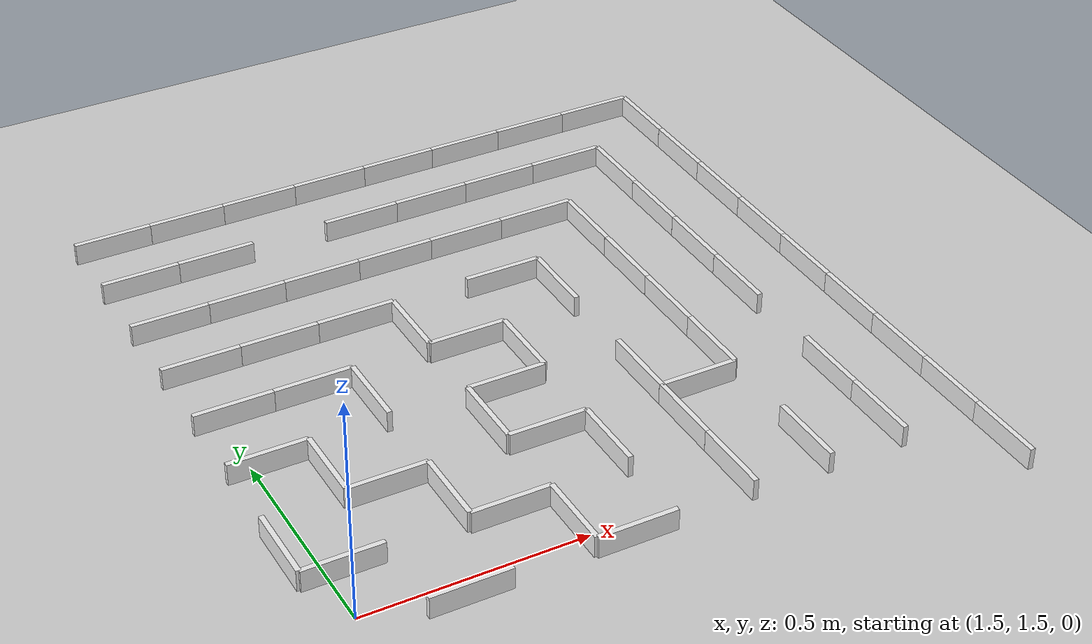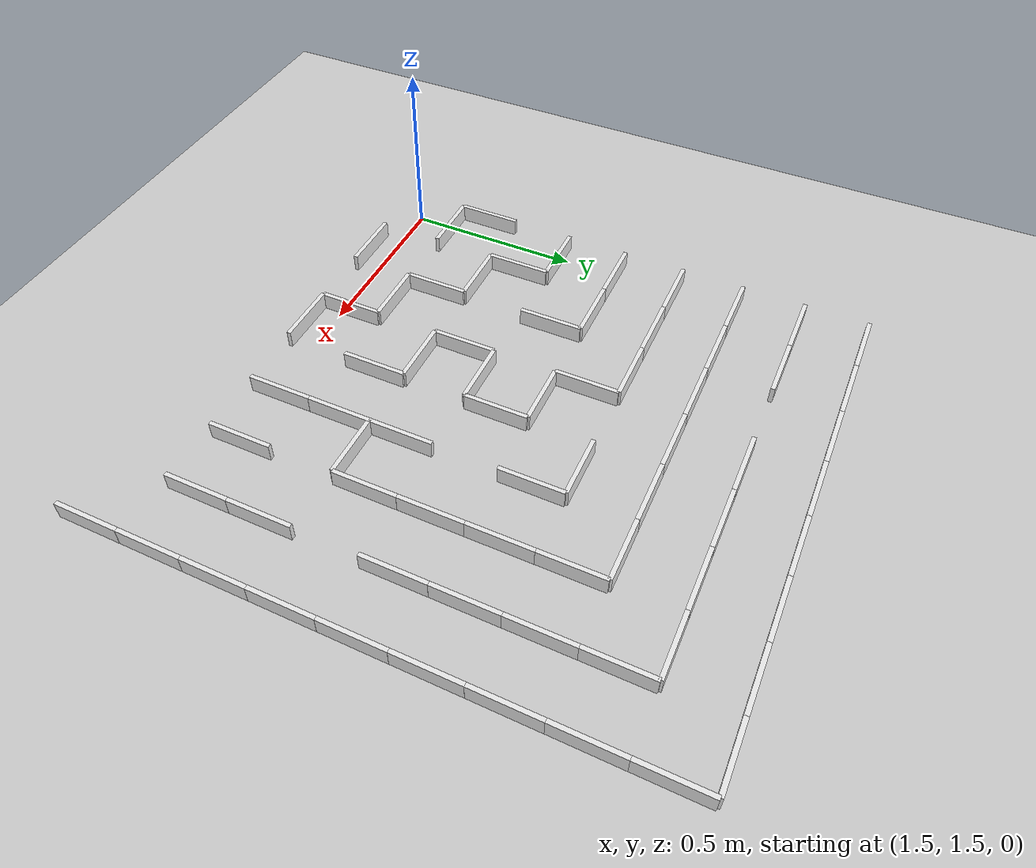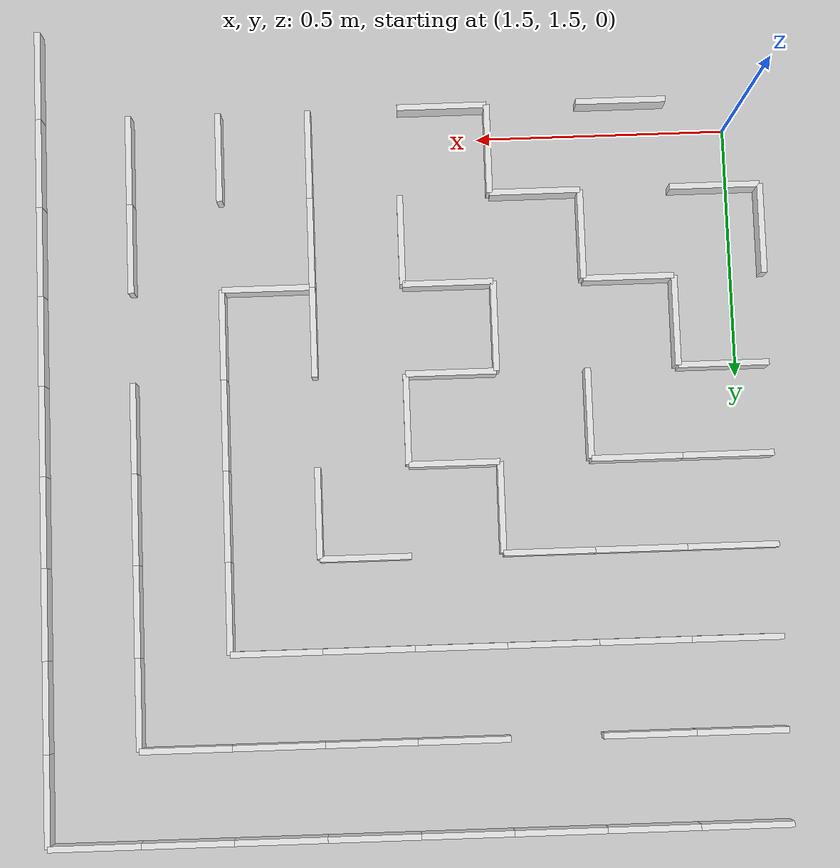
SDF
<sdf version="1.4">
 <world name="default">
  <include><uri>model://ground_plane</uri></include>
  <model name="wall">
   <pose>1.53 2.88 0.025 0 0 0</pose>
   <link name="link">
    <inertial>
     <mass>10</mass>
     <inertia><ixx>1</ixx><ixy>0</ixy><ixz>0</ixz><iyy>1</iyy><iyz>0</iyz><izz>1</izz></inertia>
    </inertial>
    <collision name="collision"><geometry><box><size>0.180 0.012 0.050</size></box></geometry></collision>
    <visual name="visual">
     <geometry><box><size>0.180 0.012 0.050</size></box></geometry>
     <material>
      <script><uri>file://media/materials/scripts/gazebo.material</uri><name>Gazebo/White</name></script>
     </material>
    </visual>
    <velocity_decay><linear>0</linear><angular>0</angular></velocity_decay>
   </link>
   <static>1</static>
  </model>
  <model name="wall">
   <pose>1.71 2.88 0.025 0 0 0</pose>
   <link name="link">
    <inertial>
     <mass>10</mass>
     <inertia><ixx>1</ixx><ixy>0</ixy><ixz>0</ixz><iyy>1</iyy><iyz>0</iyz><izz>1</izz></inertia>
    </inertial>
    <collision name="collision"><geometry><box><size>0.180 0.012 0.050</size></box></geometry></collision>
    <visual name="visual">
     <geometry><box><size>0.180 0.012 0.050</size></box></geometry>
     <material>
      <script><uri>file://media/materials/scripts/gazebo.material</uri><name>Gazebo/White</name></script>
     </material>
    </visual>
    <velocity_decay><linear>0</linear><angular>0</angular></velocity_decay>
   </link>
   <static>1</static>
  </model>
  <model name="wall">
   <pose>1.89 2.88 0.025 0 0 0</pose>
   <link name="link">
    <inertial>
     <mass>10</mass>
     <inertia><ixx>1</ixx><ixy>0</ixy><ixz>0</ixz><iyy>1</iyy><iyz>0</iyz><izz>1</izz></inertia>
    </inertial>
    <collision name="collision"><geometry><box><size>0.180 0.012 0.050</size></box></geometry></collision>
    <visual name="visual">
     <geometry><box><size>0.180 0.012 0.050</size></box></geometry>
     <material>
      <script><uri>file://media/materials/scripts/gazebo.material</uri><name>Gazebo/White</name></script>
     </material>
    </visual>
    <velocity_decay><linear>0</linear><angular>0</angular></velocity_decay>
   </link>
   <static>1</static>
  </model>
  <model name="wall">
   <pose>2.07 2.88 0.025 0 0 0</pose>
   <link name="link">
    <inertial>
     <mass>10</mass>
     <inertia><ixx>1</ixx><ixy>0</ixy><ixz>0</ixz><iyy>1</iyy><iyz>0</iyz><izz>1</izz></inertia>
    </inertial>
    <collision name="collision"><geometry><box><size>0.180 0.012 0.050</size></box></geometry></collision>
    <visual name="visual">
     <geometry><box><size>0.180 0.012 0.050</size></box></geometry>
     <material>
      <script><uri>file://media/materials/scripts/gazebo.material</uri><name>Gazebo/White</name></script>
     </material>
    </visual>
    <velocity_decay><linear>0</linear><angular>0</angular></velocity_decay>
   </link>
   <static>1</static>
  </model>
  <model name="wall">
   <pose>2.25 2.88 0.025 0 0 0</pose>
   <link name="link">
    <inertial>
     <mass>10</mass>
     <inertia><ixx>1</ixx><ixy>0</ixy><ixz>0</ixz><iyy>1</iyy><iyz>0</iyz><izz>1</izz></inertia>
    </inertial>
    <collision name="collision"><geometry><box><size>0.180 0.012 0.050</size></box></geometry></collision>
    <visual name="visual">
     <geometry><box><size>0.180 0.012 0.050</size></box></geometry>
     <material>
      <script><uri>file://media/materials/scripts/gazebo.material</uri><name>Gazebo/White</name></script>
     </material>
    </visual>
    <velocity_decay><linear>0</linear><angular>0</angular></velocity_decay>
   </link>
   <static>1</static>
  </model>
  <model name="wall">
   <pose>2.43 2.88 0.025 0 0 0</pose>
   <link name="link">
    <inertial>
     <mass>10</mass>
     <inertia><ixx>1</ixx><ixy>0</ixy><ixz>0</ixz><iyy>1</iyy><iyz>0</iyz><izz>1</izz></inertia>
    </inertial>
    <collision name="collision"><geometry><box><size>0.180 0.012 0.050</size></box></geometry></collision>
    <visual name="visual">
     <geometry><box><size>0.180 0.012 0.050</size></box></geometry>
     <material>
      <script><uri>file://media/materials/scripts/gazebo.material</uri><name>Gazebo/White</name></script>
     </material>
    </visual>
    <velocity_decay><linear>0</linear><angular>0</angular></velocity_decay>
   </link>
   <static>1</static>
  </model>
  <model name="wall">
   <pose>2.61 2.88 0.025 0 0 0</pose>
   <link name="link">
    <inertial>
     <mass>10</mass>
     <inertia><ixx>1</ixx><ixy>0</ixy><ixz>0</ixz><iyy>1</iyy><iyz>0</iyz><izz>1</izz></inertia>
    </inertial>
    <collision name="collision"><geometry><box><size>0.180 0.012 0.050</size></box></geometry></collision>
    <visual name="visual">
     <geometry><box><size>0.180 0.012 0.050</size></box></geometry>
     <material>
      <script><uri>file://media/materials/scripts/gazebo.material</uri><name>Gazebo/White</name></script>
     </material>
    </visual>
    <velocity_decay><linear>0</linear><angular>0</angular></velocity_decay>
   </link>
   <static>1</static>
  </model>
  <model name="wall">
   <pose>2.79 2.88 0.025 0 0 0</pose>
   <link name="link">
    <inertial>
     <mass>10</mass>
     <inertia><ixx>1</ixx><ixy>0</ixy><ixz>0</ixz><iyy>1</iyy><iyz>0</iyz><izz>1</izz></inertia>
    </inertial>
    <collision name="collision"><geometry><box><size>0.180 0.012 0.050</size></box></geometry></collision>
    <visual name="visual">
     <geometry><box><size>0.180 0.012 0.050</size></box></geometry>
     <material>
      <script><uri>file://media/materials/scripts/gazebo.material</uri><name>Gazebo/White</name></script>
     </material>
    </visual>
    <velocity_decay><linear>0</linear><angular>0</angular></velocity_decay>
   </link>
   <static>1</static>
  </model>
  <model name="wall">
   <pose>1.53 2.7 0.025 0 0 0</pose>
   <link name="link">
    <inertial>
     <mass>10</mass>
     <inertia><ixx>1</ixx><ixy>0</ixy><ixz>0</ixz><iyy>1</iyy><iyz>0</iyz><izz>1</izz></inertia>
    </inertial>
    <collision name="collision"><geometry><box><size>0.180 0.012 0.050</size></box></geometry></collision>
    <visual name="visual">
     <geometry><box><size>0.180 0.012 0.050</size></box></geometry>
     <material>
      <script><uri>file://media/materials/scripts/gazebo.material</uri><name>Gazebo/White</name></script>
     </material>
    </visual>
    <velocity_decay><linear>0</linear><angular>0</angular></velocity_decay>
   </link>
   <static>1</static>
  </model>
  <model name="wall">
   <pose>1.71 2.7 0.025 0 0 0</pose>
   <link name="link">
    <inertial>
     <mass>10</mass>
     <inertia><ixx>1</ixx><ixy>0</ixy><ixz>0</ixz><iyy>1</iyy><iyz>0</iyz><izz>1</izz></inertia>
    </inertial>
    <collision name="collision"><geometry><box><size>0.180 0.012 0.050</size></box></geometry></collision>
    <visual name="visual">
     <geometry><box><size>0.180 0.012 0.050</size></box></geometry>
     <material>
      <script><uri>file://media/materials/scripts/gazebo.material</uri><name>Gazebo/White</name></script>
     </material>
    </visual>
    <velocity_decay><linear>0</linear><angular>0</angular></velocity_decay>
   </link>
   <static>1</static>
  </model>
  <model name="wall">
   <pose>2.07 2.7 0.025 0 0 0</pose>
   <link name="link">
    <inertial>
     <mass>10</mass>
     <inertia><ixx>1</ixx><ixy>0</ixy><ixz>0</ixz><iyy>1</iyy><iyz>0</iyz><izz>1</izz></inertia>
    </inertial>
    <collision name="collision"><geometry><box><size>0.180 0.012 0.050</size></box></geometry></collision>
    <visual name="visual">
     <geometry><box><size>0.180 0.012 0.050</size></box></geometry>
     <material>
      <script><uri>file://media/materials/scripts/gazebo.material</uri><name>Gazebo/White</name></script>
     </material>
    </visual>
    <velocity_decay><linear>0</linear><angular>0</angular></velocity_decay>
   </link>
   <static>1</static>
  </model>
  <model name="wall">
   <pose>2.25 2.7 0.025 0 0 0</pose>
   <link name="link">
    <inertial>
     <mass>10</mass>
     <inertia><ixx>1</ixx><ixy>0</ixy><ixz>0</ixz><iyy>1</iyy><iyz>0</iyz><izz>1</izz></inertia>
    </inertial>
    <collision name="collision"><geometry><box><size>0.180 0.012 0.050</size></box></geometry></collision>
    <visual name="visual">
     <geometry><box><size>0.180 0.012 0.050</size></box></geometry>
     <material>
      <script><uri>file://media/materials/scripts/gazebo.material</uri><name>Gazebo/White</name></script>
     </material>
    </visual>
    <velocity_decay><linear>0</linear><angular>0</angular></velocity_decay>
   </link>
   <static>1</static>
  </model>
  <model name="wall">
   <pose>2.43 2.7 0.025 0 0 0</pose>
   <link name="link">
    <inertial>
     <mass>10</mass>
     <inertia><ixx>1</ixx><ixy>0</ixy><ixz>0</ixz><iyy>1</iyy><iyz>0</iyz><izz>1</izz></inertia>
    </inertial>
    <collision name="collision"><geometry><box><size>0.180 0.012 0.050</size></box></geometry></collision>
    <visual name="visual">
     <geometry><box><size>0.180 0.012 0.050</size></box></geometry>
     <material>
      <script><uri>file://media/materials/scripts/gazebo.material</uri><name>Gazebo/White</name></script>
     </material>
    </visual>
    <velocity_decay><linear>0</linear><angular>0</angular></velocity_decay>
   </link>
   <static>1</static>
  </model>
  <model name="wall">
   <pose>2.61 2.7 0.025 0 0 0</pose>
   <link name="link">
    <inertial>
     <mass>10</mass>
     <inertia><ixx>1</ixx><ixy>0</ixy><ixz>0</ixz><iyy>1</iyy><iyz>0</iyz><izz>1</izz></inertia>
    </inertial>
    <collision name="collision"><geometry><box><size>0.180 0.012 0.050</size></box></geometry></collision>
    <visual name="visual">
     <geometry><box><size>0.180 0.012 0.050</size></box></geometry>
     <material>
      <script><uri>file://media/materials/scripts/gazebo.material</uri><name>Gazebo/White</name></script>
     </material>
    </visual>
    <velocity_decay><linear>0</linear><angular>0</angular></velocity_decay>
   </link>
   <static>1</static>
  </model>
  <model name="wall">
   <pose>1.53 2.52 0.025 0 0 0</pose>
   <link name="link">
    <inertial>
     <mass>10</mass>
     <inertia><ixx>1</ixx><ixy>0</ixy><ixz>0</ixz><iyy>1</iyy><iyz>0</iyz><izz>1</izz></inertia>
    </inertial>
    <collision name="collision"><geometry><box><size>0.180 0.012 0.050</size></box></geometry></collision>
    <visual name="visual">
     <geometry><box><size>0.180 0.012 0.050</size></box></geometry>
     <material>
      <script><uri>file://media/materials/scripts/gazebo.material</uri><name>Gazebo/White</name></script>
     </material>
    </visual>
    <velocity_decay><linear>0</linear><angular>0</angular></velocity_decay>
   </link>
   <static>1</static>
  </model>
  <model name="wall">
   <pose>1.71 2.52 0.025 0 0 0</pose>
   <link name="link">
    <inertial>
     <mass>10</mass>
     <inertia><ixx>1</ixx><ixy>0</ixy><ixz>0</ixz><iyy>1</iyy><iyz>0</iyz><izz>1</izz></inertia>
    </inertial>
    <collision name="collision"><geometry><box><size>0.180 0.012 0.050</size></box></geometry></collision>
    <visual name="visual">
     <geometry><box><size>0.180 0.012 0.050</size></box></geometry>
     <material>
      <script><uri>file://media/materials/scripts/gazebo.material</uri><name>Gazebo/White</name></script>
     </material>
    </visual>
    <velocity_decay><linear>0</linear><angular>0</angular></velocity_decay>
   </link>
   <static>1</static>
  </model>
  <model name="wall">
   <pose>1.89 2.52 0.025 0 0 0</pose>
   <link name="link">
    <inertial>
     <mass>10</mass>
     <inertia><ixx>1</ixx><ixy>0</ixy><ixz>0</ixz><iyy>1</iyy><iyz>0</iyz><izz>1</izz></inertia>
    </inertial>
    <collision name="collision"><geometry><box><size>0.180 0.012 0.050</size></box></geometry></collision>
    <visual name="visual">
     <geometry><box><size>0.180 0.012 0.050</size></box></geometry>
     <material>
      <script><uri>file://media/materials/scripts/gazebo.material</uri><name>Gazebo/White</name></script>
     </material>
    </visual>
    <velocity_decay><linear>0</linear><angular>0</angular></velocity_decay>
   </link>
   <static>1</static>
  </model>
  <model name="wall">
   <pose>2.07 2.52 0.025 0 0 0</pose>
   <link name="link">
    <inertial>
     <mass>10</mass>
     <inertia><ixx>1</ixx><ixy>0</ixy><ixz>0</ixz><iyy>1</iyy><iyz>0</iyz><izz>1</izz></inertia>
    </inertial>
    <collision name="collision"><geometry><box><size>0.180 0.012 0.050</size></box></geometry></collision>
    <visual name="visual">
     <geometry><box><size>0.180 0.012 0.050</size></box></geometry>
     <material>
      <script><uri>file://media/materials/scripts/gazebo.material</uri><name>Gazebo/White</name></script>
     </material>
    </visual>
    <velocity_decay><linear>0</linear><angular>0</angular></velocity_decay>
   </link>
   <static>1</static>
  </model>
  <model name="wall">
   <pose>2.25 2.52 0.025 0 0 0</pose>
   <link name="link">
    <inertial>
     <mass>10</mass>
     <inertia><ixx>1</ixx><ixy>0</ixy><ixz>0</ixz><iyy>1</iyy><iyz>0</iyz><izz>1</izz></inertia>
    </inertial>
    <collision name="collision"><geometry><box><size>0.180 0.012 0.050</size></box></geometry></collision>
    <visual name="visual">
     <geometry><box><size>0.180 0.012 0.050</size></box></geometry>
     <material>
      <script><uri>file://media/materials/scripts/gazebo.material</uri><name>Gazebo/White</name></script>
     </material>
    </visual>
    <velocity_decay><linear>0</linear><angular>0</angular></velocity_decay>
   </link>
   <static>1</static>
  </model>
  <model name="wall">
   <pose>2.43 2.52 0.025 0 0 0</pose>
   <link name="link">
    <inertial>
     <mass>10</mass>
     <inertia><ixx>1</ixx><ixy>0</ixy><ixz>0</ixz><iyy>1</iyy><iyz>0</iyz><izz>1</izz></inertia>
    </inertial>
    <collision name="collision"><geometry><box><size>0.180 0.012 0.050</size></box></geometry></collision>
    <visual name="visual">
     <geometry><box><size>0.180 0.012 0.050</size></box></geometry>
     <material>
      <script><uri>file://media/materials/scripts/gazebo.material</uri><name>Gazebo/White</name></script>
     </material>
    </visual>
    <velocity_decay><linear>0</linear><angular>0</angular></velocity_decay>
   </link>
   <static>1</static>
  </model>
  <model name="wall">
   <pose>1.53 2.34 0.025 0 0 0</pose>
   <link name="link">
    <inertial>
     <mass>10</mass>
     <inertia><ixx>1</ixx><ixy>0</ixy><ixz>0</ixz><iyy>1</iyy><iyz>0</iyz><izz>1</izz></inertia>
    </inertial>
    <collision name="collision"><geometry><box><size>0.180 0.012 0.050</size></box></geometry></collision>
    <visual name="visual">
     <geometry><box><size>0.180 0.012 0.050</size></box></geometry>
     <material>
      <script><uri>file://media/materials/scripts/gazebo.material</uri><name>Gazebo/White</name></script>
     </material>
    </visual>
    <velocity_decay><linear>0</linear><angular>0</angular></velocity_decay>
   </link>
   <static>1</static>
  </model>
  <model name="wall">
   <pose>1.71 2.34 0.025 0 0 0</pose>
   <link name="link">
    <inertial>
     <mass>10</mass>
     <inertia><ixx>1</ixx><ixy>0</ixy><ixz>0</ixz><iyy>1</iyy><iyz>0</iyz><izz>1</izz></inertia>
    </inertial>
    <collision name="collision"><geometry><box><size>0.180 0.012 0.050</size></box></geometry></collision>
    <visual name="visual">
     <geometry><box><size>0.180 0.012 0.050</size></box></geometry>
     <material>
      <script><uri>file://media/materials/scripts/gazebo.material</uri><name>Gazebo/White</name></script>
     </material>
    </visual>
    <velocity_decay><linear>0</linear><angular>0</angular></velocity_decay>
   </link>
   <static>1</static>
  </model>
  <model name="wall">
   <pose>1.89 2.34 0.025 0 0 0</pose>
   <link name="link">
    <inertial>
     <mass>10</mass>
     <inertia><ixx>1</ixx><ixy>0</ixy><ixz>0</ixz><iyy>1</iyy><iyz>0</iyz><izz>1</izz></inertia>
    </inertial>
    <collision name="collision"><geometry><box><size>0.180 0.012 0.050</size></box></geometry></collision>
    <visual name="visual">
     <geometry><box><size>0.180 0.012 0.050</size></box></geometry>
     <material>
      <script><uri>file://media/materials/scripts/gazebo.material</uri><name>Gazebo/White</name></script>
     </material>
    </visual>
    <velocity_decay><linear>0</linear><angular>0</angular></velocity_decay>
   </link>
   <static>1</static>
  </model>
  <model name="wall">
   <pose>2.25 2.34 0.025 0 0 0</pose>
   <link name="link">
    <inertial>
     <mass>10</mass>
     <inertia><ixx>1</ixx><ixy>0</ixy><ixz>0</ixz><iyy>1</iyy><iyz>0</iyz><izz>1</izz></inertia>
    </inertial>
    <collision name="collision"><geometry><box><size>0.180 0.012 0.050</size></box></geometry></collision>
    <visual name="visual">
     <geometry><box><size>0.180 0.012 0.050</size></box></geometry>
     <material>
      <script><uri>file://media/materials/scripts/gazebo.material</uri><name>Gazebo/White</name></script>
     </material>
    </visual>
    <velocity_decay><linear>0</linear><angular>0</angular></velocity_decay>
   </link>
   <static>1</static>
  </model>
  <model name="wall">
   <pose>1.53 2.16 0.025 0 0 0</pose>
   <link name="link">
    <inertial>
     <mass>10</mass>
     <inertia><ixx>1</ixx><ixy>0</ixy><ixz>0</ixz><iyy>1</iyy><iyz>0</iyz><izz>1</izz></inertia>
    </inertial>
    <collision name="collision"><geometry><box><size>0.180 0.012 0.050</size></box></geometry></collision>
    <visual name="visual">
     <geometry><box><size>0.180 0.012 0.050</size></box></geometry>
     <material>
      <script><uri>file://media/materials/scripts/gazebo.material</uri><name>Gazebo/White</name></script>
     </material>
    </visual>
    <velocity_decay><linear>0</linear><angular>0</angular></velocity_decay>
   </link>
   <static>1</static>
  </model>
  <model name="wall">
   <pose>1.71 2.16 0.025 0 0 0</pose>
   <link name="link">
    <inertial>
     <mass>10</mass>
     <inertia><ixx>1</ixx><ixy>0</ixy><ixz>0</ixz><iyy>1</iyy><iyz>0</iyz><izz>1</izz></inertia>
    </inertial>
    <collision name="collision"><geometry><box><size>0.180 0.012 0.050</size></box></geometry></collision>
    <visual name="visual">
     <geometry><box><size>0.180 0.012 0.050</size></box></geometry>
     <material>
      <script><uri>file://media/materials/scripts/gazebo.material</uri><name>Gazebo/White</name></script>
     </material>
    </visual>
    <velocity_decay><linear>0</linear><angular>0</angular></velocity_decay>
   </link>
   <static>1</static>
  </model>
  <model name="wall">
   <pose>2.07 2.16 0.025 0 0 0</pose>
   <link name="link">
    <inertial>
     <mass>10</mass>
     <inertia><ixx>1</ixx><ixy>0</ixy><ixz>0</ixz><iyy>1</iyy><iyz>0</iyz><izz>1</izz></inertia>
    </inertial>
    <collision name="collision"><geometry><box><size>0.180 0.012 0.050</size></box></geometry></collision>
    <visual name="visual">
     <geometry><box><size>0.180 0.012 0.050</size></box></geometry>
     <material>
      <script><uri>file://media/materials/scripts/gazebo.material</uri><name>Gazebo/White</name></script>
     </material>
    </visual>
    <velocity_decay><linear>0</linear><angular>0</angular></velocity_decay>
   </link>
   <static>1</static>
  </model>
  <model name="wall">
   <pose>1.53 1.98 0.025 0 0 0</pose>
   <link name="link">
    <inertial>
     <mass>10</mass>
     <inertia><ixx>1</ixx><ixy>0</ixy><ixz>0</ixz><iyy>1</iyy><iyz>0</iyz><izz>1</izz></inertia>
    </inertial>
    <collision name="collision"><geometry><box><size>0.180 0.012 0.050</size></box></geometry></collision>
    <visual name="visual">
     <geometry><box><size>0.180 0.012 0.050</size></box></geometry>
     <material>
      <script><uri>file://media/materials/scripts/gazebo.material</uri><name>Gazebo/White</name></script>
     </material>
    </visual>
    <velocity_decay><linear>0</linear><angular>0</angular></velocity_decay>
   </link>
   <static>1</static>
  </model>
  <model name="wall">
   <pose>2.07 1.98 0.025 0 0 0</pose>
   <link name="link">
    <inertial>
     <mass>10</mass>
     <inertia><ixx>1</ixx><ixy>0</ixy><ixz>0</ixz><iyy>1</iyy><iyz>0</iyz><izz>1</izz></inertia>
    </inertial>
    <collision name="collision"><geometry><box><size>0.180 0.012 0.050</size></box></geometry></collision>
    <visual name="visual">
     <geometry><box><size>0.180 0.012 0.050</size></box></geometry>
     <material>
      <script><uri>file://media/materials/scripts/gazebo.material</uri><name>Gazebo/White</name></script>
     </material>
    </visual>
    <velocity_decay><linear>0</linear><angular>0</angular></velocity_decay>
   </link>
   <static>1</static>
  </model>
  <model name="wall">
   <pose>1.71 1.8 0.025 0 0 0</pose>
   <link name="link">
    <inertial>
     <mass>10</mass>
     <inertia><ixx>1</ixx><ixy>0</ixy><ixz>0</ixz><iyy>1</iyy><iyz>0</iyz><izz>1</izz></inertia>
    </inertial>
    <collision name="collision"><geometry><box><size>0.180 0.012 0.050</size></box></geometry></collision>
    <visual name="visual">
     <geometry><box><size>0.180 0.012 0.050</size></box></geometry>
     <material>
      <script><uri>file://media/materials/scripts/gazebo.material</uri><name>Gazebo/White</name></script>
     </material>
    </visual>
    <velocity_decay><linear>0</linear><angular>0</angular></velocity_decay>
   </link>
   <static>1</static>
  </model>
  <model name="wall">
   <pose>2.07 1.8 0.025 0 0 0</pose>
   <link name="link">
    <inertial>
     <mass>10</mass>
     <inertia><ixx>1</ixx><ixy>0</ixy><ixz>0</ixz><iyy>1</iyy><iyz>0</iyz><izz>1</izz></inertia>
    </inertial>
    <collision name="collision"><geometry><box><size>0.180 0.012 0.050</size></box></geometry></collision>
    <visual name="visual">
     <geometry><box><size>0.180 0.012 0.050</size></box></geometry>
     <material>
      <script><uri>file://media/materials/scripts/gazebo.material</uri><name>Gazebo/White</name></script>
     </material>
    </visual>
    <velocity_decay><linear>0</linear><angular>0</angular></velocity_decay>
   </link>
   <static>1</static>
  </model>
  <model name="wall">
   <pose>2.43 1.8 0.025 0 0 0</pose>
   <link name="link">
    <inertial>
     <mass>10</mass>
     <inertia><ixx>1</ixx><ixy>0</ixy><ixz>0</ixz><iyy>1</iyy><iyz>0</iyz><izz>1</izz></inertia>
    </inertial>
    <collision name="collision"><geometry><box><size>0.180 0.012 0.050</size></box></geometry></collision>
    <visual name="visual">
     <geometry><box><size>0.180 0.012 0.050</size></box></geometry>
     <material>
      <script><uri>file://media/materials/scripts/gazebo.material</uri><name>Gazebo/White</name></script>
     </material>
    </visual>
    <velocity_decay><linear>0</linear><angular>0</angular></velocity_decay>
   </link>
   <static>1</static>
  </model>
  <model name="wall">
   <pose>1.53 1.62 0.025 0 0 0</pose>
   <link name="link">
    <inertial>
     <mass>10</mass>
     <inertia><ixx>1</ixx><ixy>0</ixy><ixz>0</ixz><iyy>1</iyy><iyz>0</iyz><izz>1</izz></inertia>
    </inertial>
    <collision name="collision"><geometry><box><size>0.180 0.012 0.050</size></box></geometry></collision>
    <visual name="visual">
     <geometry><box><size>0.180 0.012 0.050</size></box></geometry>
     <material>
      <script><uri>file://media/materials/scripts/gazebo.material</uri><name>Gazebo/White</name></script>
     </material>
    </visual>
    <velocity_decay><linear>0</linear><angular>0</angular></velocity_decay>
   </link>
   <static>1</static>
  </model>
  <model name="wall">
   <pose>1.89 1.62 0.025 0 0 0</pose>
   <link name="link">
    <inertial>
     <mass>10</mass>
     <inertia><ixx>1</ixx><ixy>0</ixy><ixz>0</ixz><iyy>1</iyy><iyz>0</iyz><izz>1</izz></inertia>
    </inertial>
    <collision name="collision"><geometry><box><size>0.180 0.012 0.050</size></box></geometry></collision>
    <visual name="visual">
     <geometry><box><size>0.180 0.012 0.050</size></box></geometry>
     <material>
      <script><uri>file://media/materials/scripts/gazebo.material</uri><name>Gazebo/White</name></script>
     </material>
    </visual>
    <velocity_decay><linear>0</linear><angular>0</angular></velocity_decay>
   </link>
   <static>1</static>
  </model>
  <model name="wall">
   <pose>1.71 1.44 0.025 0 0 0</pose>
   <link name="link">
    <inertial>
     <mass>10</mass>
     <inertia><ixx>1</ixx><ixy>0</ixy><ixz>0</ixz><iyy>1</iyy><iyz>0</iyz><izz>1</izz></inertia>
    </inertial>
    <collision name="collision"><geometry><box><size>0.180 0.012 0.050</size></box></geometry></collision>
    <visual name="visual">
     <geometry><box><size>0.180 0.012 0.050</size></box></geometry>
     <material>
      <script><uri>file://media/materials/scripts/gazebo.material</uri><name>Gazebo/White</name></script>
     </material>
    </visual>
    <velocity_decay><linear>0</linear><angular>0</angular></velocity_decay>
   </link>
   <static>1</static>
  </model>
  <model name="wall">
   <pose>2.07 1.44 0.025 0 0 0</pose>
   <link name="link">
    <inertial>
     <mass>10</mass>
     <inertia><ixx>1</ixx><ixy>0</ixy><ixz>0</ixz><iyy>1</iyy><iyz>0</iyz><izz>1</izz></inertia>
    </inertial>
    <collision name="collision"><geometry><box><size>0.180 0.012 0.050</size></box></geometry></collision>
    <visual name="visual">
     <geometry><box><size>0.180 0.012 0.050</size></box></geometry>
     <material>
      <script><uri>file://media/materials/scripts/gazebo.material</uri><name>Gazebo/White</name></script>
     </material>
    </visual>
    <velocity_decay><linear>0</linear><angular>0</angular></velocity_decay>
   </link>
   <static>1</static>
  </model>
  <model name="wall">
   <pose>2.88 2.79 0.025 0 0 1.57</pose>
   <link name="link">
    <inertial>
     <mass>10</mass>
     <inertia><ixx>1</ixx><ixy>0</ixy><ixz>0</ixz><iyy>1</iyy><iyz>0</iyz><izz>1</izz></inertia>
    </inertial>
    <collision name="collision"><geometry><box><size>0.180 0.012 0.050</size></box></geometry></collision>
    <visual name="visual">
     <geometry><box><size>0.180 0.012 0.050</size></box></geometry>
     <material>
      <script><uri>file://media/materials/scripts/gazebo.material</uri><name>Gazebo/White</name></script>
     </material>
    </visual>
    <velocity_decay><linear>0</linear><angular>0</angular></velocity_decay>
   </link>
   <static>1</static>
  </model>
  <model name="wall">
   <pose>2.7 2.61 0.025 0 0 1.57</pose>
   <link name="link">
    <inertial>
     <mass>10</mass>
     <inertia><ixx>1</ixx><ixy>0</ixy><ixz>0</ixz><iyy>1</iyy><iyz>0</iyz><izz>1</izz></inertia>
    </inertial>
    <collision name="collision"><geometry><box><size>0.180 0.012 0.050</size></box></geometry></collision>
    <visual name="visual">
     <geometry><box><size>0.180 0.012 0.050</size></box></geometry>
     <material>
      <script><uri>file://media/materials/scripts/gazebo.material</uri><name>Gazebo/White</name></script>
     </material>
    </visual>
    <velocity_decay><linear>0</linear><angular>0</angular></velocity_decay>
   </link>
   <static>1</static>
  </model>
  <model name="wall">
   <pose>2.88 2.61 0.025 0 0 1.57</pose>
   <link name="link">
    <inertial>
     <mass>10</mass>
     <inertia><ixx>1</ixx><ixy>0</ixy><ixz>0</ixz><iyy>1</iyy><iyz>0</iyz><izz>1</izz></inertia>
    </inertial>
    <collision name="collision"><geometry><box><size>0.180 0.012 0.050</size></box></geometry></collision>
    <visual name="visual">
     <geometry><box><size>0.180 0.012 0.050</size></box></geometry>
     <material>
      <script><uri>file://media/materials/scripts/gazebo.material</uri><name>Gazebo/White</name></script>
     </material>
    </visual>
    <velocity_decay><linear>0</linear><angular>0</angular></velocity_decay>
   </link>
   <static>1</static>
  </model>
  <model name="wall">
   <pose>2.52 2.43 0.025 0 0 1.57</pose>
   <link name="link">
    <inertial>
     <mass>10</mass>
     <inertia><ixx>1</ixx><ixy>0</ixy><ixz>0</ixz><iyy>1</iyy><iyz>0</iyz><izz>1</izz></inertia>
    </inertial>
    <collision name="collision"><geometry><box><size>0.180 0.012 0.050</size></box></geometry></collision>
    <visual name="visual">
     <geometry><box><size>0.180 0.012 0.050</size></box></geometry>
     <material>
      <script><uri>file://media/materials/scripts/gazebo.material</uri><name>Gazebo/White</name></script>
     </material>
    </visual>
    <velocity_decay><linear>0</linear><angular>0</angular></velocity_decay>
   </link>
   <static>1</static>
  </model>
  <model name="wall">
   <pose>2.7 2.43 0.025 0 0 1.57</pose>
   <link name="link">
    <inertial>
     <mass>10</mass>
     <inertia><ixx>1</ixx><ixy>0</ixy><ixz>0</ixz><iyy>1</iyy><iyz>0</iyz><izz>1</izz></inertia>
    </inertial>
    <collision name="collision"><geometry><box><size>0.180 0.012 0.050</size></box></geometry></collision>
    <visual name="visual">
     <geometry><box><size>0.180 0.012 0.050</size></box></geometry>
     <material>
      <script><uri>file://media/materials/scripts/gazebo.material</uri><name>Gazebo/White</name></script>
     </material>
    </visual>
    <velocity_decay><linear>0</linear><angular>0</angular></velocity_decay>
   </link>
   <static>1</static>
  </model>
  <model name="wall">
   <pose>2.88 2.43 0.025 0 0 1.57</pose>
   <link name="link">
    <inertial>
     <mass>10</mass>
     <inertia><ixx>1</ixx><ixy>0</ixy><ixz>0</ixz><iyy>1</iyy><iyz>0</iyz><izz>1</izz></inertia>
    </inertial>
    <collision name="collision"><geometry><box><size>0.180 0.012 0.050</size></box></geometry></collision>
    <visual name="visual">
     <geometry><box><size>0.180 0.012 0.050</size></box></geometry>
     <material>
      <script><uri>file://media/materials/scripts/gazebo.material</uri><name>Gazebo/White</name></script>
     </material>
    </visual>
    <velocity_decay><linear>0</linear><angular>0</angular></velocity_decay>
   </link>
   <static>1</static>
  </model>
  <model name="wall">
   <pose>1.98 2.25 0.025 0 0 1.57</pose>
   <link name="link">
    <inertial>
     <mass>10</mass>
     <inertia><ixx>1</ixx><ixy>0</ixy><ixz>0</ixz><iyy>1</iyy><iyz>0</iyz><izz>1</izz></inertia>
    </inertial>
    <collision name="collision"><geometry><box><size>0.180 0.012 0.050</size></box></geometry></collision>
    <visual name="visual">
     <geometry><box><size>0.180 0.012 0.050</size></box></geometry>
     <material>
      <script><uri>file://media/materials/scripts/gazebo.material</uri><name>Gazebo/White</name></script>
     </material>
    </visual>
    <velocity_decay><linear>0</linear><angular>0</angular></velocity_decay>
   </link>
   <static>1</static>
  </model>
  <model name="wall">
   <pose>2.34 2.25 0.025 0 0 1.57</pose>
   <link name="link">
    <inertial>
     <mass>10</mass>
     <inertia><ixx>1</ixx><ixy>0</ixy><ixz>0</ixz><iyy>1</iyy><iyz>0</iyz><izz>1</izz></inertia>
    </inertial>
    <collision name="collision"><geometry><box><size>0.180 0.012 0.050</size></box></geometry></collision>
    <visual name="visual">
     <geometry><box><size>0.180 0.012 0.050</size></box></geometry>
     <material>
      <script><uri>file://media/materials/scripts/gazebo.material</uri><name>Gazebo/White</name></script>
     </material>
    </visual>
    <velocity_decay><linear>0</linear><angular>0</angular></velocity_decay>
   </link>
   <static>1</static>
  </model>
  <model name="wall">
   <pose>2.52 2.25 0.025 0 0 1.57</pose>
   <link name="link">
    <inertial>
     <mass>10</mass>
     <inertia><ixx>1</ixx><ixy>0</ixy><ixz>0</ixz><iyy>1</iyy><iyz>0</iyz><izz>1</izz></inertia>
    </inertial>
    <collision name="collision"><geometry><box><size>0.180 0.012 0.050</size></box></geometry></collision>
    <visual name="visual">
     <geometry><box><size>0.180 0.012 0.050</size></box></geometry>
     <material>
      <script><uri>file://media/materials/scripts/gazebo.material</uri><name>Gazebo/White</name></script>
     </material>
    </visual>
    <velocity_decay><linear>0</linear><angular>0</angular></velocity_decay>
   </link>
   <static>1</static>
  </model>
  <model name="wall">
   <pose>2.7 2.25 0.025 0 0 1.57</pose>
   <link name="link">
    <inertial>
     <mass>10</mass>
     <inertia><ixx>1</ixx><ixy>0</ixy><ixz>0</ixz><iyy>1</iyy><iyz>0</iyz><izz>1</izz></inertia>
    </inertial>
    <collision name="collision"><geometry><box><size>0.180 0.012 0.050</size></box></geometry></collision>
    <visual name="visual">
     <geometry><box><size>0.180 0.012 0.050</size></box></geometry>
     <material>
      <script><uri>file://media/materials/scripts/gazebo.material</uri><name>Gazebo/White</name></script>
     </material>
    </visual>
    <velocity_decay><linear>0</linear><angular>0</angular></velocity_decay>
   </link>
   <static>1</static>
  </model>
  <model name="wall">
   <pose>2.88 2.25 0.025 0 0 1.57</pose>
   <link name="link">
    <inertial>
     <mass>10</mass>
     <inertia><ixx>1</ixx><ixy>0</ixy><ixz>0</ixz><iyy>1</iyy><iyz>0</iyz><izz>1</izz></inertia>
    </inertial>
    <collision name="collision"><geometry><box><size>0.180 0.012 0.050</size></box></geometry></collision>
    <visual name="visual">
     <geometry><box><size>0.180 0.012 0.050</size></box></geometry>
     <material>
      <script><uri>file://media/materials/scripts/gazebo.material</uri><name>Gazebo/White</name></script>
     </material>
    </visual>
    <velocity_decay><linear>0</linear><angular>0</angular></velocity_decay>
   </link>
   <static>1</static>
  </model>
  <model name="wall">
   <pose>1.8 2.07 0.025 0 0 1.57</pose>
   <link name="link">
    <inertial>
     <mass>10</mass>
     <inertia><ixx>1</ixx><ixy>0</ixy><ixz>0</ixz><iyy>1</iyy><iyz>0</iyz><izz>1</izz></inertia>
    </inertial>
    <collision name="collision"><geometry><box><size>0.180 0.012 0.050</size></box></geometry></collision>
    <visual name="visual">
     <geometry><box><size>0.180 0.012 0.050</size></box></geometry>
     <material>
      <script><uri>file://media/materials/scripts/gazebo.material</uri><name>Gazebo/White</name></script>
     </material>
    </visual>
    <velocity_decay><linear>0</linear><angular>0</angular></velocity_decay>
   </link>
   <static>1</static>
  </model>
  <model name="wall">
   <pose>2.16 2.07 0.025 0 0 1.57</pose>
   <link name="link">
    <inertial>
     <mass>10</mass>
     <inertia><ixx>1</ixx><ixy>0</ixy><ixz>0</ixz><iyy>1</iyy><iyz>0</iyz><izz>1</izz></inertia>
    </inertial>
    <collision name="collision"><geometry><box><size>0.180 0.012 0.050</size></box></geometry></collision>
    <visual name="visual">
     <geometry><box><size>0.180 0.012 0.050</size></box></geometry>
     <material>
      <script><uri>file://media/materials/scripts/gazebo.material</uri><name>Gazebo/White</name></script>
     </material>
    </visual>
    <velocity_decay><linear>0</linear><angular>0</angular></velocity_decay>
   </link>
   <static>1</static>
  </model>
  <model name="wall">
   <pose>2.52 2.07 0.025 0 0 1.57</pose>
   <link name="link">
    <inertial>
     <mass>10</mass>
     <inertia><ixx>1</ixx><ixy>0</ixy><ixz>0</ixz><iyy>1</iyy><iyz>0</iyz><izz>1</izz></inertia>
    </inertial>
    <collision name="collision"><geometry><box><size>0.180 0.012 0.050</size></box></geometry></collision>
    <visual name="visual">
     <geometry><box><size>0.180 0.012 0.050</size></box></geometry>
     <material>
      <script><uri>file://media/materials/scripts/gazebo.material</uri><name>Gazebo/White</name></script>
     </material>
    </visual>
    <velocity_decay><linear>0</linear><angular>0</angular></velocity_decay>
   </link>
   <static>1</static>
  </model>
  <model name="wall">
   <pose>2.7 2.07 0.025 0 0 1.57</pose>
   <link name="link">
    <inertial>
     <mass>10</mass>
     <inertia><ixx>1</ixx><ixy>0</ixy><ixz>0</ixz><iyy>1</iyy><iyz>0</iyz><izz>1</izz></inertia>
    </inertial>
    <collision name="collision"><geometry><box><size>0.180 0.012 0.050</size></box></geometry></collision>
    <visual name="visual">
     <geometry><box><size>0.180 0.012 0.050</size></box></geometry>
     <material>
      <script><uri>file://media/materials/scripts/gazebo.material</uri><name>Gazebo/White</name></script>
     </material>
    </visual>
    <velocity_decay><linear>0</linear><angular>0</angular></velocity_decay>
   </link>
   <static>1</static>
  </model>
  <model name="wall">
   <pose>2.88 2.07 0.025 0 0 1.57</pose>
   <link name="link">
    <inertial>
     <mass>10</mass>
     <inertia><ixx>1</ixx><ixy>0</ixy><ixz>0</ixz><iyy>1</iyy><iyz>0</iyz><izz>1</izz></inertia>
    </inertial>
    <collision name="collision"><geometry><box><size>0.180 0.012 0.050</size></box></geometry></collision>
    <visual name="visual">
     <geometry><box><size>0.180 0.012 0.050</size></box></geometry>
     <material>
      <script><uri>file://media/materials/scripts/gazebo.material</uri><name>Gazebo/White</name></script>
     </material>
    </visual>
    <velocity_decay><linear>0</linear><angular>0</angular></velocity_decay>
   </link>
   <static>1</static>
  </model>
  <model name="wall">
   <pose>1.62 1.89 0.025 0 0 1.57</pose>
   <link name="link">
    <inertial>
     <mass>10</mass>
     <inertia><ixx>1</ixx><ixy>0</ixy><ixz>0</ixz><iyy>1</iyy><iyz>0</iyz><izz>1</izz></inertia>
    </inertial>
    <collision name="collision"><geometry><box><size>0.180 0.012 0.050</size></box></geometry></collision>
    <visual name="visual">
     <geometry><box><size>0.180 0.012 0.050</size></box></geometry>
     <material>
      <script><uri>file://media/materials/scripts/gazebo.material</uri><name>Gazebo/White</name></script>
     </material>
    </visual>
    <velocity_decay><linear>0</linear><angular>0</angular></velocity_decay>
   </link>
   <static>1</static>
  </model>
  <model name="wall">
   <pose>1.98 1.89 0.025 0 0 1.57</pose>
   <link name="link">
    <inertial>
     <mass>10</mass>
     <inertia><ixx>1</ixx><ixy>0</ixy><ixz>0</ixz><iyy>1</iyy><iyz>0</iyz><izz>1</izz></inertia>
    </inertial>
    <collision name="collision"><geometry><box><size>0.180 0.012 0.050</size></box></geometry></collision>
    <visual name="visual">
     <geometry><box><size>0.180 0.012 0.050</size></box></geometry>
     <material>
      <script><uri>file://media/materials/scripts/gazebo.material</uri><name>Gazebo/White</name></script>
     </material>
    </visual>
    <velocity_decay><linear>0</linear><angular>0</angular></velocity_decay>
   </link>
   <static>1</static>
  </model>
  <model name="wall">
   <pose>2.34 1.89 0.025 0 0 1.57</pose>
   <link name="link">
    <inertial>
     <mass>10</mass>
     <inertia><ixx>1</ixx><ixy>0</ixy><ixz>0</ixz><iyy>1</iyy><iyz>0</iyz><izz>1</izz></inertia>
    </inertial>
    <collision name="collision"><geometry><box><size>0.180 0.012 0.050</size></box></geometry></collision>
    <visual name="visual">
     <geometry><box><size>0.180 0.012 0.050</size></box></geometry>
     <material>
      <script><uri>file://media/materials/scripts/gazebo.material</uri><name>Gazebo/White</name></script>
     </material>
    </visual>
    <velocity_decay><linear>0</linear><angular>0</angular></velocity_decay>
   </link>
   <static>1</static>
  </model>
  <model name="wall">
   <pose>2.52 1.89 0.025 0 0 1.57</pose>
   <link name="link">
    <inertial>
     <mass>10</mass>
     <inertia><ixx>1</ixx><ixy>0</ixy><ixz>0</ixz><iyy>1</iyy><iyz>0</iyz><izz>1</izz></inertia>
    </inertial>
    <collision name="collision"><geometry><box><size>0.180 0.012 0.050</size></box></geometry></collision>
    <visual name="visual">
     <geometry><box><size>0.180 0.012 0.050</size></box></geometry>
     <material>
      <script><uri>file://media/materials/scripts/gazebo.material</uri><name>Gazebo/White</name></script>
     </material>
    </visual>
    <velocity_decay><linear>0</linear><angular>0</angular></velocity_decay>
   </link>
   <static>1</static>
  </model>
  <model name="wall">
   <pose>2.88 1.89 0.025 0 0 1.57</pose>
   <link name="link">
    <inertial>
     <mass>10</mass>
     <inertia><ixx>1</ixx><ixy>0</ixy><ixz>0</ixz><iyy>1</iyy><iyz>0</iyz><izz>1</izz></inertia>
    </inertial>
    <collision name="collision"><geometry><box><size>0.180 0.012 0.050</size></box></geometry></collision>
    <visual name="visual">
     <geometry><box><size>0.180 0.012 0.050</size></box></geometry>
     <material>
      <script><uri>file://media/materials/scripts/gazebo.material</uri><name>Gazebo/White</name></script>
     </material>
    </visual>
    <velocity_decay><linear>0</linear><angular>0</angular></velocity_decay>
   </link>
   <static>1</static>
  </model>
  <model name="wall">
   <pose>1.44 1.71 0.025 0 0 1.57</pose>
   <link name="link">
    <inertial>
     <mass>10</mass>
     <inertia><ixx>1</ixx><ixy>0</ixy><ixz>0</ixz><iyy>1</iyy><iyz>0</iyz><izz>1</izz></inertia>
    </inertial>
    <collision name="collision"><geometry><box><size>0.180 0.012 0.050</size></box></geometry></collision>
    <visual name="visual">
     <geometry><box><size>0.180 0.012 0.050</size></box></geometry>
     <material>
      <script><uri>file://media/materials/scripts/gazebo.material</uri><name>Gazebo/White</name></script>
     </material>
    </visual>
    <velocity_decay><linear>0</linear><angular>0</angular></velocity_decay>
   </link>
   <static>1</static>
  </model>
  <model name="wall">
   <pose>1.8 1.71 0.025 0 0 1.57</pose>
   <link name="link">
    <inertial>
     <mass>10</mass>
     <inertia><ixx>1</ixx><ixy>0</ixy><ixz>0</ixz><iyy>1</iyy><iyz>0</iyz><izz>1</izz></inertia>
    </inertial>
    <collision name="collision"><geometry><box><size>0.180 0.012 0.050</size></box></geometry></collision>
    <visual name="visual">
     <geometry><box><size>0.180 0.012 0.050</size></box></geometry>
     <material>
      <script><uri>file://media/materials/scripts/gazebo.material</uri><name>Gazebo/White</name></script>
     </material>
    </visual>
    <velocity_decay><linear>0</linear><angular>0</angular></velocity_decay>
   </link>
   <static>1</static>
  </model>
  <model name="wall">
   <pose>2.16 1.71 0.025 0 0 1.57</pose>
   <link name="link">
    <inertial>
     <mass>10</mass>
     <inertia><ixx>1</ixx><ixy>0</ixy><ixz>0</ixz><iyy>1</iyy><iyz>0</iyz><izz>1</izz></inertia>
    </inertial>
    <collision name="collision"><geometry><box><size>0.180 0.012 0.050</size></box></geometry></collision>
    <visual name="visual">
     <geometry><box><size>0.180 0.012 0.050</size></box></geometry>
     <material>
      <script><uri>file://media/materials/scripts/gazebo.material</uri><name>Gazebo/White</name></script>
     </material>
    </visual>
    <velocity_decay><linear>0</linear><angular>0</angular></velocity_decay>
   </link>
   <static>1</static>
  </model>
  <model name="wall">
   <pose>2.34 1.71 0.025 0 0 1.57</pose>
   <link name="link">
    <inertial>
     <mass>10</mass>
     <inertia><ixx>1</ixx><ixy>0</ixy><ixz>0</ixz><iyy>1</iyy><iyz>0</iyz><izz>1</izz></inertia>
    </inertial>
    <collision name="collision"><geometry><box><size>0.180 0.012 0.050</size></box></geometry></collision>
    <visual name="visual">
     <geometry><box><size>0.180 0.012 0.050</size></box></geometry>
     <material>
      <script><uri>file://media/materials/scripts/gazebo.material</uri><name>Gazebo/White</name></script>
     </material>
    </visual>
    <velocity_decay><linear>0</linear><angular>0</angular></velocity_decay>
   </link>
   <static>1</static>
  </model>
  <model name="wall">
   <pose>2.7 1.71 0.025 0 0 1.57</pose>
   <link name="link">
    <inertial>
     <mass>10</mass>
     <inertia><ixx>1</ixx><ixy>0</ixy><ixz>0</ixz><iyy>1</iyy><iyz>0</iyz><izz>1</izz></inertia>
    </inertial>
    <collision name="collision"><geometry><box><size>0.180 0.012 0.050</size></box></geometry></collision>
    <visual name="visual">
     <geometry><box><size>0.180 0.012 0.050</size></box></geometry>
     <material>
      <script><uri>file://media/materials/scripts/gazebo.material</uri><name>Gazebo/White</name></script>
     </material>
    </visual>
    <velocity_decay><linear>0</linear><angular>0</angular></velocity_decay>
   </link>
   <static>1</static>
  </model>
  <model name="wall">
   <pose>2.88 1.71 0.025 0 0 1.57</pose>
   <link name="link">
    <inertial>
     <mass>10</mass>
     <inertia><ixx>1</ixx><ixy>0</ixy><ixz>0</ixz><iyy>1</iyy><iyz>0</iyz><izz>1</izz></inertia>
    </inertial>
    <collision name="collision"><geometry><box><size>0.180 0.012 0.050</size></box></geometry></collision>
    <visual name="visual">
     <geometry><box><size>0.180 0.012 0.050</size></box></geometry>
     <material>
      <script><uri>file://media/materials/scripts/gazebo.material</uri><name>Gazebo/White</name></script>
     </material>
    </visual>
    <velocity_decay><linear>0</linear><angular>0</angular></velocity_decay>
   </link>
   <static>1</static>
  </model>
  <model name="wall">
   <pose>1.98 1.53 0.025 0 0 1.57</pose>
   <link name="link">
    <inertial>
     <mass>10</mass>
     <inertia><ixx>1</ixx><ixy>0</ixy><ixz>0</ixz><iyy>1</iyy><iyz>0</iyz><izz>1</izz></inertia>
    </inertial>
    <collision name="collision"><geometry><box><size>0.180 0.012 0.050</size></box></geometry></collision>
    <visual name="visual">
     <geometry><box><size>0.180 0.012 0.050</size></box></geometry>
     <material>
      <script><uri>file://media/materials/scripts/gazebo.material</uri><name>Gazebo/White</name></script>
     </material>
    </visual>
    <velocity_decay><linear>0</linear><angular>0</angular></velocity_decay>
   </link>
   <static>1</static>
  </model>
  <model name="wall">
   <pose>2.34 1.53 0.025 0 0 1.57</pose>
   <link name="link">
    <inertial>
     <mass>10</mass>
     <inertia><ixx>1</ixx><ixy>0</ixy><ixz>0</ixz><iyy>1</iyy><iyz>0</iyz><izz>1</izz></inertia>
    </inertial>
    <collision name="collision"><geometry><box><size>0.180 0.012 0.050</size></box></geometry></collision>
    <visual name="visual">
     <geometry><box><size>0.180 0.012 0.050</size></box></geometry>
     <material>
      <script><uri>file://media/materials/scripts/gazebo.material</uri><name>Gazebo/White</name></script>
     </material>
    </visual>
    <velocity_decay><linear>0</linear><angular>0</angular></velocity_decay>
   </link>
   <static>1</static>
  </model>
  <model name="wall">
   <pose>2.52 1.53 0.025 0 0 1.57</pose>
   <link name="link">
    <inertial>
     <mass>10</mass>
     <inertia><ixx>1</ixx><ixy>0</ixy><ixz>0</ixz><iyy>1</iyy><iyz>0</iyz><izz>1</izz></inertia>
    </inertial>
    <collision name="collision"><geometry><box><size>0.180 0.012 0.050</size></box></geometry></collision>
    <visual name="visual">
     <geometry><box><size>0.180 0.012 0.050</size></box></geometry>
     <material>
      <script><uri>file://media/materials/scripts/gazebo.material</uri><name>Gazebo/White</name></script>
     </material>
    </visual>
    <velocity_decay><linear>0</linear><angular>0</angular></velocity_decay>
   </link>
   <static>1</static>
  </model>
  <model name="wall">
   <pose>2.7 1.53 0.025 0 0 1.57</pose>
   <link name="link">
    <inertial>
     <mass>10</mass>
     <inertia><ixx>1</ixx><ixy>0</ixy><ixz>0</ixz><iyy>1</iyy><iyz>0</iyz><izz>1</izz></inertia>
    </inertial>
    <collision name="collision"><geometry><box><size>0.180 0.012 0.050</size></box></geometry></collision>
    <visual name="visual">
     <geometry><box><size>0.180 0.012 0.050</size></box></geometry>
     <material>
      <script><uri>file://media/materials/scripts/gazebo.material</uri><name>Gazebo/White</name></script>
     </material>
    </visual>
    <velocity_decay><linear>0</linear><angular>0</angular></velocity_decay>
   </link>
   <static>1</static>
  </model>
  <model name="wall">
   <pose>2.88 1.53 0.025 0 0 1.57</pose>
   <link name="link">
    <inertial>
     <mass>10</mass>
     <inertia><ixx>1</ixx><ixy>0</ixy><ixz>0</ixz><iyy>1</iyy><iyz>0</iyz><izz>1</izz></inertia>
    </inertial>
    <collision name="collision"><geometry><box><size>0.180 0.012 0.050</size></box></geometry></collision>
    <visual name="visual">
     <geometry><box><size>0.180 0.012 0.050</size></box></geometry>
     <material>
      <script><uri>file://media/materials/scripts/gazebo.material</uri><name>Gazebo/White</name></script>
     </material>
    </visual>
    <velocity_decay><linear>0</linear><angular>0</angular></velocity_decay>
   </link>
   <static>1</static>
  </model>
  <model name="wall">
   <pose>2.88 1.35 0.025 0 0 1.57</pose>
   <link name="link">
    <inertial>
     <mass>10</mass>
     <inertia><ixx>1</ixx><ixy>0</ixy><ixz>0</ixz><iyy>1</iyy><iyz>0</iyz><izz>1</izz></inertia>
    </inertial>
    <collision name="collision"><geometry><box><size>0.180 0.012 0.050</size></box></geometry></collision>
    <visual name="visual">
     <geometry><box><size>0.180 0.012 0.050</size></box></geometry>
     <material>
      <script><uri>file://media/materials/scripts/gazebo.material</uri><name>Gazebo/White</name></script>
     </material>
    </visual>
    <velocity_decay><linear>0</linear><angular>0</angular></velocity_decay>
   </link>
   <static>1</static>
  </model>
 </world>
</sdf>
